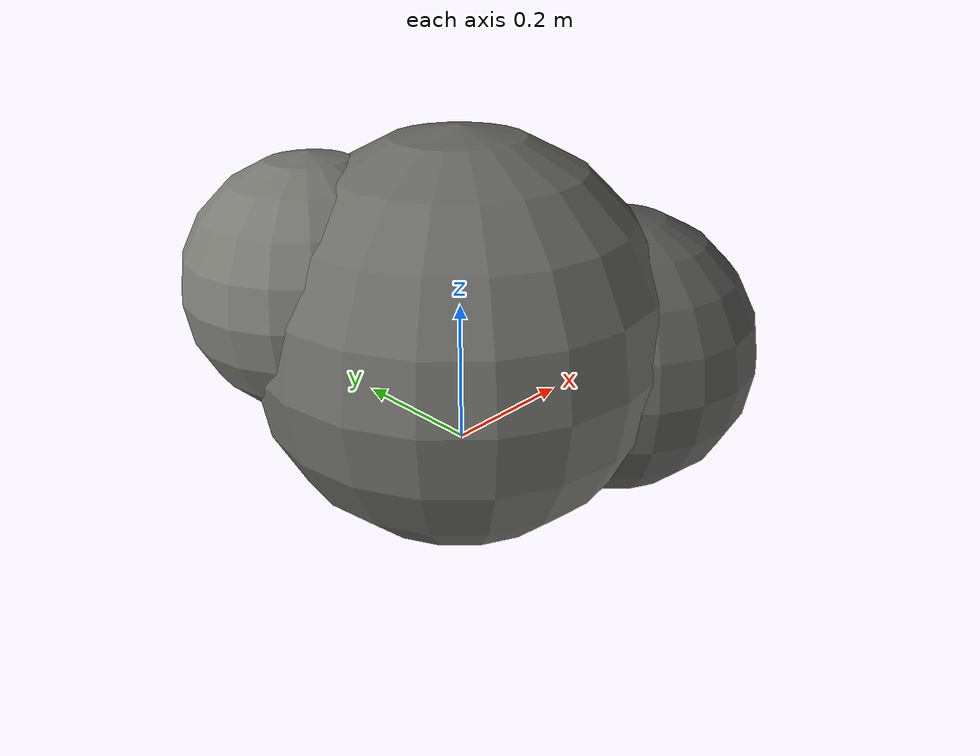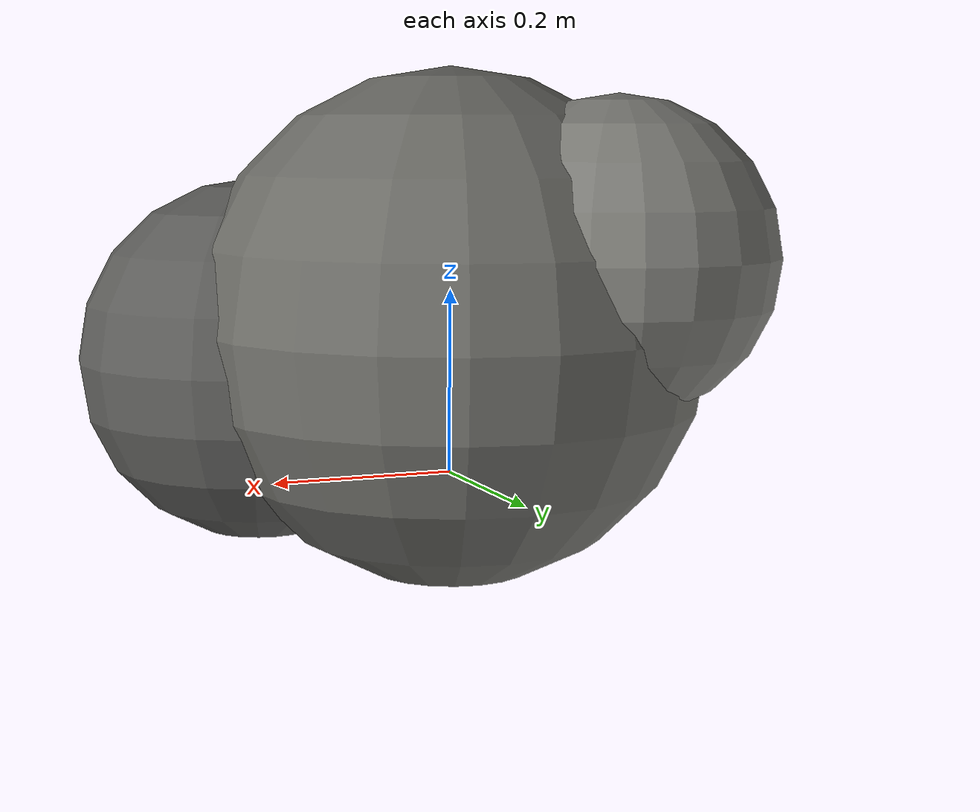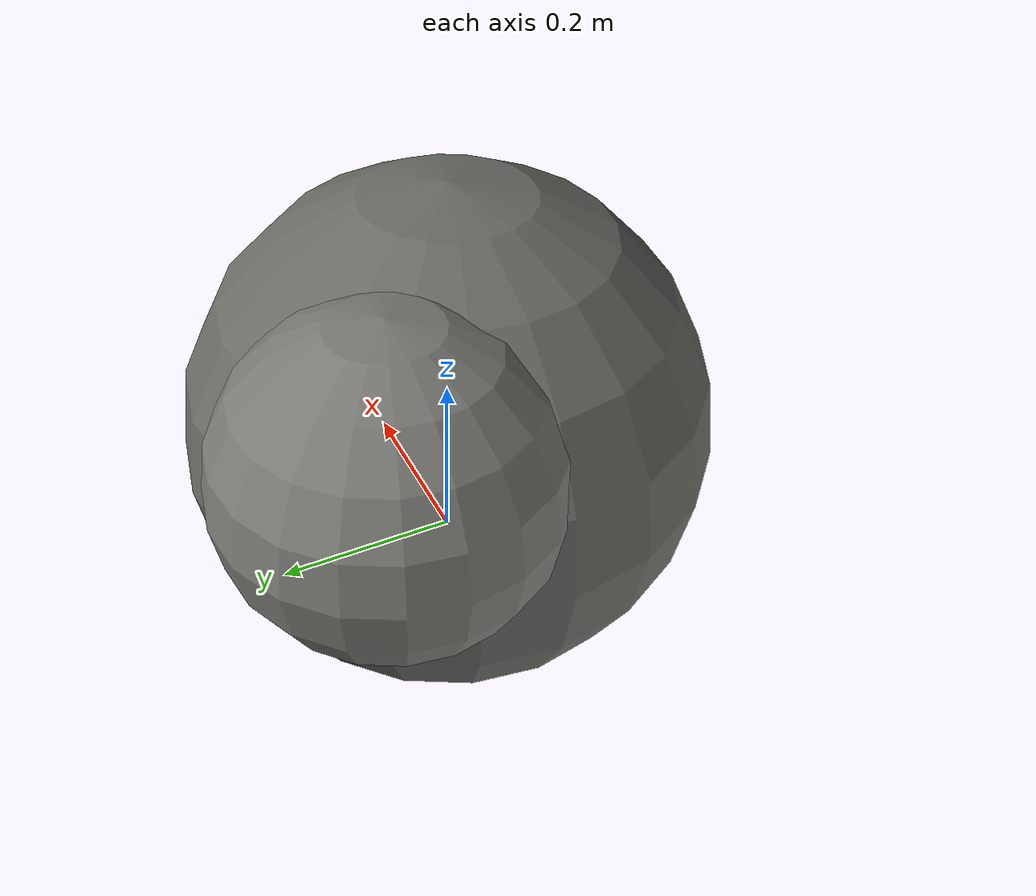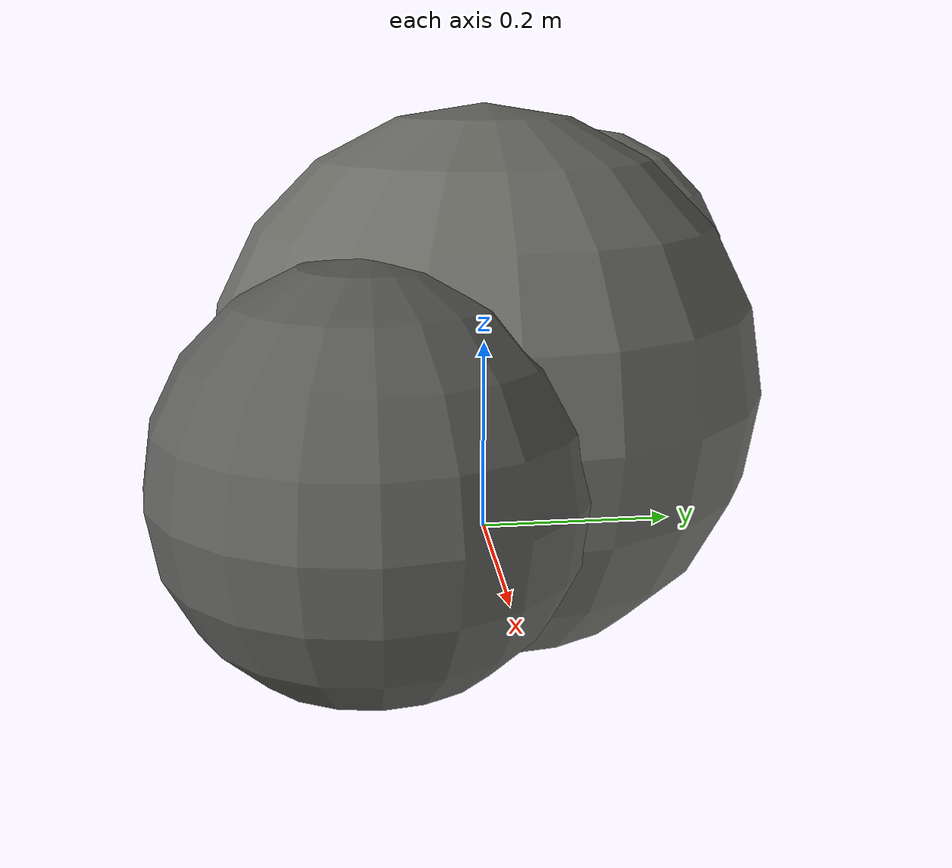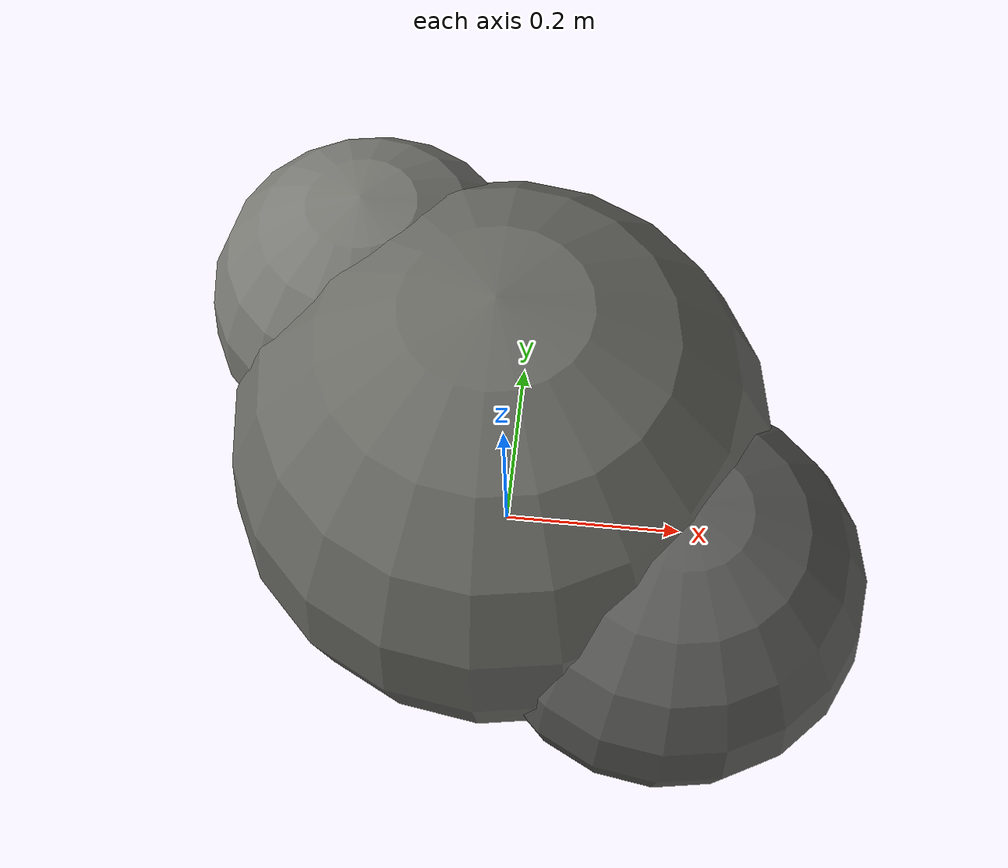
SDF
<?xml version="1.0" ?>
<sdf version="1.6">
  <model name="rock_obstacle">
    <static>true</static>

    <!-- 由多个球体拼成不规则岩石，避免依赖外部 mesh。 -->
    <link name="rock_cluster">
      <collision name="main_collision">
        <pose>0 0 0.16 0 0 0</pose>
        <geometry>
          <sphere>
            <radius>0.28</radius>
          </sphere>
        </geometry>
      </collision>
      <visual name="main_visual">
        <pose>0 0 0.16 0 0 0</pose>
        <geometry>
          <sphere>
            <radius>0.28</radius>
          </sphere>
        </geometry>
        <material>
          <ambient>0.26 0.26 0.25 1</ambient>
          <diffuse>0.42 0.42 0.40 1</diffuse>
        </material>
      </visual>

      <collision name="side_collision">
        <pose>0.18 -0.12 0.12 0 0 0</pose>
        <geometry>
          <sphere>
            <radius>0.20</radius>
          </sphere>
        </geometry>
      </collision>
      <visual name="side_visual">
        <pose>0.18 -0.12 0.12 0 0 0</pose>
        <geometry>
          <sphere>
            <radius>0.20</radius>
          </sphere>
        </geometry>
        <material>
          <ambient>0.22 0.22 0.22 1</ambient>
          <diffuse>0.36 0.36 0.35 1</diffuse>
        </material>
      </visual>

      <collision name="cap_collision">
        <pose>-0.14 0.12 0.24 0 0 0</pose>
        <geometry>
          <sphere>
            <radius>0.17</radius>
          </sphere>
        </geometry>
      </collision>
      <visual name="cap_visual">
        <pose>-0.14 0.12 0.24 0 0 0</pose>
        <geometry>
          <sphere>
            <radius>0.17</radius>
          </sphere>
        </geometry>
        <material>
          <ambient>0.30 0.30 0.29 1</ambient>
          <diffuse>0.48 0.48 0.46 1</diffuse>
        </material>
      </visual>
    </link>
  </model>
</sdf>
